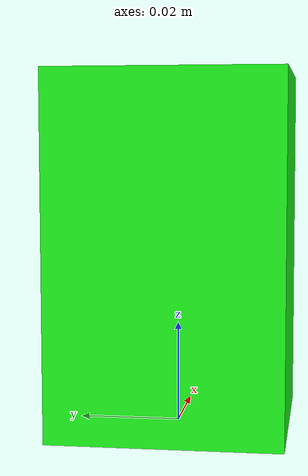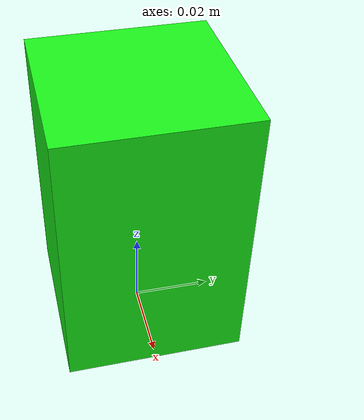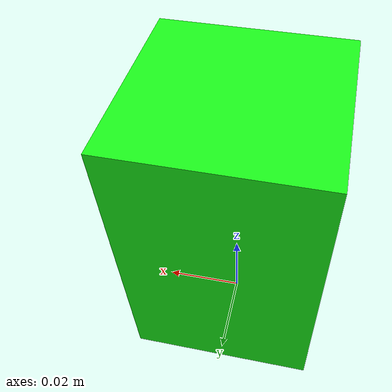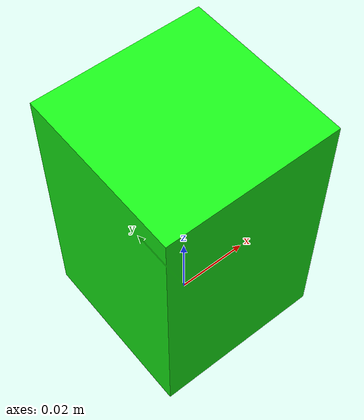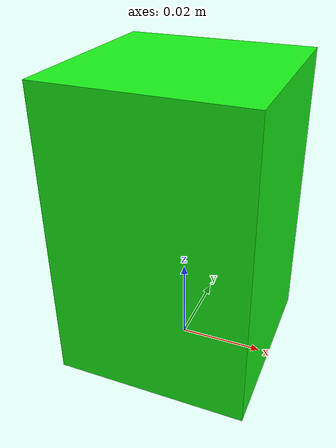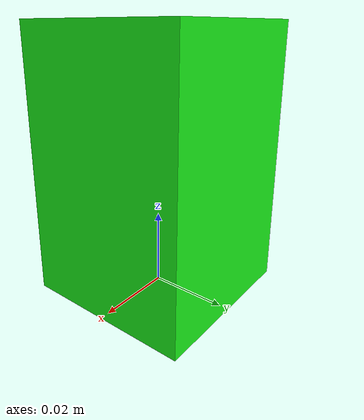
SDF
<?xml version='1.0'?>
<sdf version='1.7'>
  <model name='cabbage'>
    <link name='base_link'>
      <inertial>
        <mass>0.05</mass>
        <inertia>
          <ixx>3.17e-5</ixx>
          <ixy>0</ixy>
          <ixz>0</ixz>
          <iyy>3.17e-5</iyy>
          <iyz>0</iyz>
          <izz>2.25e-5</izz>
        </inertia>
        <pose>0 0 0 0 -0 0</pose>
      </inertial>
      <pose>0 0 0 0 0 0</pose>
      <visual name='visual'>
        <pose>0 0 0.035 0 0 0</pose>
        <geometry>
            <box>
              <size>0.045 0.045 0.07</size>
            </box>
        </geometry>
        <material>
          <diffuse>0.1 0.95 0.1 1</diffuse>
        </material>
      </visual>
      <collision name='collision'>
        <pose>0 0 0.035 0 0 0</pose>
        <geometry>
            <box>
              <size>0.045 0.045 0.07</size>
            </box>
        </geometry>
      </collision>
    </link>
  </model>
</sdf>
